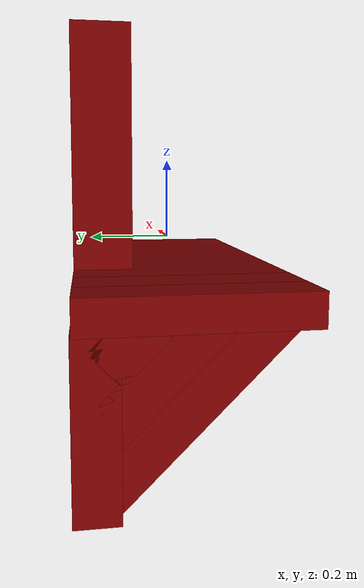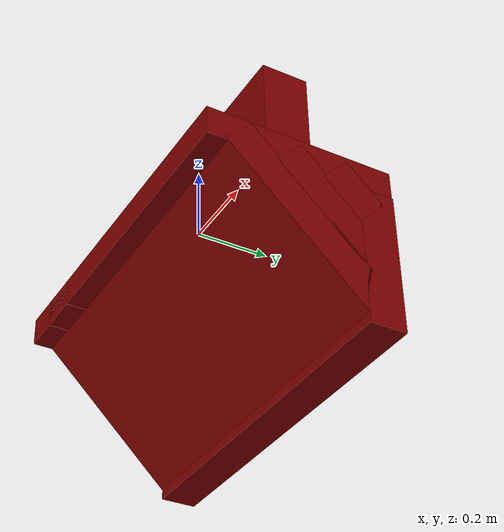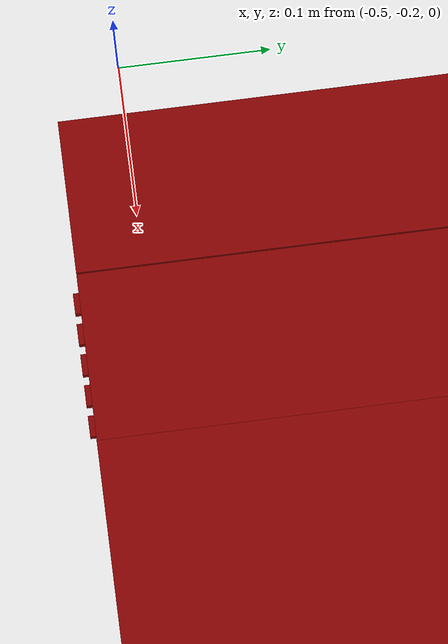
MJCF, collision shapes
<?xml version='1.0' encoding='UTF-8'?>
<mujoco model="model">
  <compiler angle="radian"/>
  <asset>
    <mesh file="visuals/Body001.obj" name="Body001_vis"/>
    <mesh file="visuals/Button001.obj" name="Button001_vis"/>
    <mesh file="visuals/Button002.obj" name="Button002_vis"/>
    <mesh file="visuals/Button003.obj" name="Button003_vis"/>
    <mesh file="visuals/Button004.obj" name="Button004_vis"/>
    <mesh file="visuals/Button005.obj" name="Button005_vis"/>
    <texture file="visuals/T_BC001.png" name="Body001_material" type="2d"/>
    <material name="Body001_material" rgba="1 1 1 1.0" texture="Body001_material" shininess="0.5000000596046448" specular="0.3103448502657381"/>
    <texture file="visuals/T_BC001.png" name="Button001_material" type="2d"/>
    <material name="Button001_material" rgba="1 1 1 1.0" texture="Button001_material" shininess="0.5000000596046448" specular="0.3103448502657381"/>
    <texture file="visuals/T_BC001.png" name="Button002_material" type="2d"/>
    <material name="Button002_material" rgba="1 1 1 1.0" texture="Button002_material" shininess="0.5000000596046448" specular="0.3103448502657381"/>
    <texture file="visuals/T_BC001.png" name="Button003_material" type="2d"/>
    <material name="Button003_material" rgba="1 1 1 1.0" texture="Button003_material" shininess="0.5000000596046448" specular="0.3103448502657381"/>
    <texture file="visuals/T_BC001.png" name="Button004_material" type="2d"/>
    <material name="Button004_material" rgba="1 1 1 1.0" texture="Button004_material" shininess="0.5000000596046448" specular="0.3103448502657381"/>
    <texture file="visuals/T_BC001.png" name="Button005_material" type="2d"/>
    <material name="Button005_material" rgba="1 1 1 1.0" texture="Button005_material" shininess="0.5000000596046448" specular="0.3103448502657381"/>
  </asset>
  <default>
    <default class="visual">
      <geom conaffinity="0" contype="0" group="1" type="mesh"/>
    </default>
    <default class="collision">
      <geom group="0" rgba="0.5 0 0 0.5"/>
    </default>
    <default class="spawn">
      <geom group="0" rgba="1 1 1 0.5" contype="0" conaffinity="0"/>
      <site group="0" rgba="1 1 1 0.5"/>
    </default>
    <default class="region">
      <geom group="1" conaffinity="0" contype="0" rgba="0 1 0 0"/>
    </default>
  </default>
  <worldbody>
    <body>
      <body name="object">
        <geom mesh="Body001_vis" type="mesh" solimp="0.998 0.998 0.001" solref="0.001 1" density="100" friction="0.95 0.3 0.1" class="visual" material="Body001_material"/>
        <geom class="collision" type="box" pos="-0.434169 0.000551 -0.098422" size="0.05240883305668831 0.2448151707649231 0.03790338709950447" quat="1.0 0.0 0.0 0.0"/>
        <geom class="collision" type="box" pos="0.109212 0.000551 -0.098422" size="0.37736526131629944 0.2448151707649231 0.03790338709950447" quat="1.0 0.0 0.0 0.0"/>
        <geom class="collision" type="box" pos="-0.323906 0.000551 -0.075711" size="0.05701182782649994 0.2448151707649231 0.015191876329481602" quat="1.0 0.0 0.0 0.0"/>
        <geom class="collision" type="box" pos="-0.323906 0.000551 -0.121029" size="0.05701182782649994 0.2448151707649231 0.015191876329481602" quat="1.0 0.0 0.0 0.0"/>
        <geom class="collision" type="box" pos="0.000220 0.017418 -0.276393" size="0.4863574504852295 0.047775715589523315 0.25466519594192505" quat="0.9238995313644409 0.38263511657714844 0.0 0.0"/>
        <geom class="collision" type="box" pos="0.000220 0.200939 -0.319744" size="0.4863574504852295 0.047775715589523315 0.1862034648656845" quat="1.0 0.0 0.0 0.0"/>
        <geom class="collision" type="box" pos="0.000754 0.175976 0.222149" size="0.17132078111171722 0.06939005851745605 0.2839372754096985" quat="1.0 0.0 0.0 0.0"/>
        <geom class="collision" type="box" pos="0.000220 0.137862 -0.152432" size="0.4863574504852295 0.047775715589523315 0.06578146666288376" quat="0.9237784147262573 0.3829275071620941 0.0 0.0"/>
        <geom class="collision" type="box" pos="0.000220 0.077522 -0.211874" size="0.4863574504852295 0.047775715589523315 0.15209178626537323" quat="0.9237784147262573 0.3829275071620941 0.0 0.0"/>
        <body name="Button001">
          <joint axis="0.0 1.0 0.0" pos="-0.368974 -0.245543 -0.098190" limited="true" name="Button001_joint" range="0.0 0.003" type="slide" damping="1" frictionloss="1" armature=".01" stiffness="0.05"/>
          <geom mesh="Button001_vis" type="mesh" solimp="0.998 0.998 0.001" solref="0.001 1" density="100" friction="0.95 0.3 0.1" class="visual" material="Button001_material"/>
          <geom class="collision" type="box" pos="-0.369021 -0.245672 -0.098119" size="0.007113554980605841 0.003041507676243782 0.0037239259108901024" quat="1.0 0.0 0.0 0.0"/>
        </body>
        <body name="Button002">
          <joint axis="0.0 1.0 0.0" pos="-0.347932 -0.245543 -0.098190" limited="true" name="Button002_joint" range="0.0 0.003" type="slide" damping="1" frictionloss="1" armature=".01" stiffness="0.05"/>
          <geom mesh="Button002_vis" type="mesh" solimp="0.998 0.998 0.001" solref="0.001 1" density="100" friction="0.95 0.3 0.1" class="visual" material="Button002_material"/>
          <geom class="collision" type="box" pos="-0.347841 -0.245672 -0.098119" size="0.007113554980605841 0.003041507676243782 0.0037239259108901024" quat="1.0 0.0 0.0 0.0"/>
        </body>
        <body name="Button003">
          <joint axis="0.0 1.0 0.0" pos="-0.326890 -0.245543 -0.098190" limited="true" name="Button003_joint" range="0.0 0.003" type="slide" damping="1" frictionloss="1" armature=".01" stiffness="0.05"/>
          <geom mesh="Button003_vis" type="mesh" solimp="0.998 0.998 0.001" solref="0.001 1" density="100" friction="0.95 0.3 0.1" class="visual" material="Button003_material"/>
          <geom class="collision" type="box" pos="-0.326819 -0.245672 -0.098119" size="0.007113554980605841 0.003041507676243782 0.0037239259108901024" quat="1.0 0.0 0.0 0.0"/>
        </body>
        <body name="Button004">
          <joint axis="0.0 1.0 0.0" pos="-0.305848 -0.245543 -0.098190" limited="true" name="Button004_joint" range="0.0 0.003" type="slide" damping="1" frictionloss="1" armature=".01" stiffness="0.05"/>
          <geom mesh="Button004_vis" type="mesh" solimp="0.998 0.998 0.001" solref="0.001 1" density="100" friction="0.95 0.3 0.1" class="visual" material="Button004_material"/>
          <geom class="collision" type="box" pos="-0.305639 -0.245672 -0.098119" size="0.007113554980605841 0.003041507676243782 0.0037239259108901024" quat="1.0 0.0 0.0 0.0"/>
        </body>
        <body name="Button005">
          <joint axis="0.0 1.0 0.0" pos="-0.284806 -0.245543 -0.098190" limited="true" name="Button005_joint" range="0.0 0.003" type="slide" damping="1" frictionloss="1" armature=".01" stiffness="0.05"/>
          <geom mesh="Button005_vis" type="mesh" solimp="0.998 0.998 0.001" solref="0.001 1" density="100" friction="0.95 0.3 0.1" class="visual" material="Button005_material"/>
          <geom class="collision" type="box" pos="-0.284656 -0.245672 -0.098119" size="0.007113554980605841 0.003041507676243782 0.0037239259108901024" quat="1.0 0.0 0.0 0.0"/>
        </body>
        <geom class="region" name="reg_main" type="box" pos="-0.0015574999999999894 -0.0025169999999999915 -0.0008365000000000178" size="0.4845375 0.245949 0.5052495"/>
      </body>
    </body>
  </worldbody>
  <actuator>
    <motor name="Button001_joint_actuator" joint="Button001_joint" gear="0.5"/>
    <motor name="Button002_joint_actuator" joint="Button002_joint" gear="0.5"/>
    <motor name="Button003_joint_actuator" joint="Button003_joint" gear="0.5"/>
    <motor name="Button004_joint_actuator" joint="Button004_joint" gear="0.5"/>
    <motor name="Button005_joint_actuator" joint="Button005_joint" gear="0.5"/>
  </actuator>
</mujoco>
